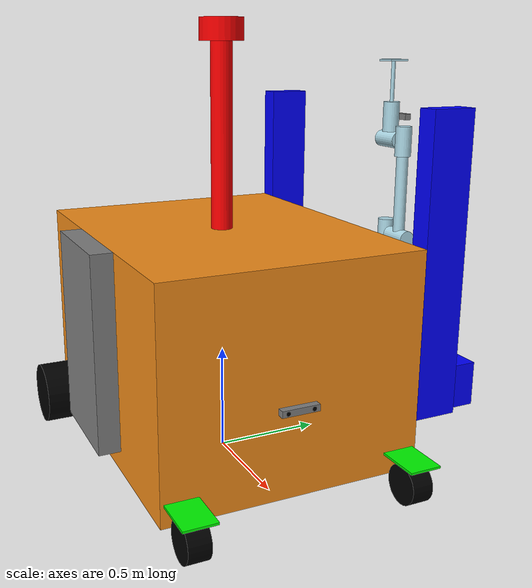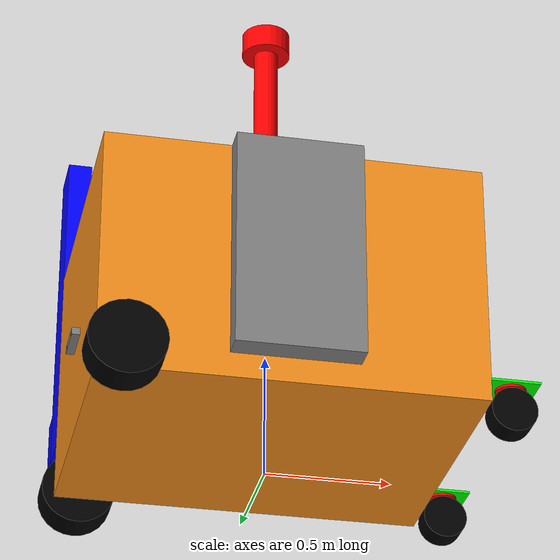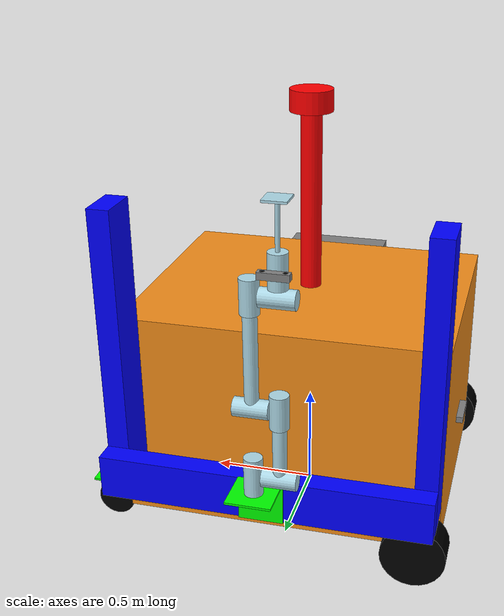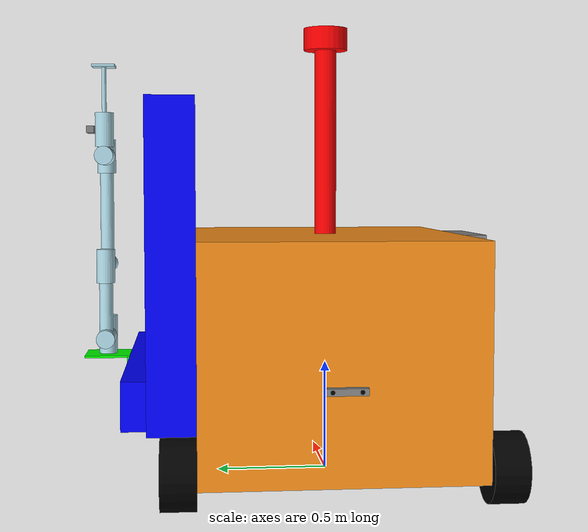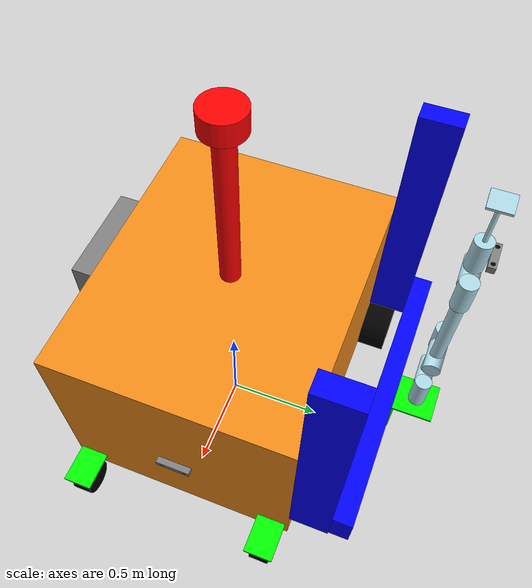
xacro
<?xml version='1.0'?>

<robot name="paint_robot" xmlns:xacro="http://www.ros.org/wiki/xacro">

<xacro:include filename="$(find paint_robot_pkg)/urdf/common_macros.xacro" /> <!--Change file location and package if applicable to test for yourself-->
<xacro:include filename="$(find paint_robot_pkg)/urdf/robot_control.gazebo.xacro" />  <!--Change file location and package name if applicable to test for yourself-->

  <xacro:property name="box_size_length" value="1.5" />
  <xacro:property name="box_size_width" value="1.2" />
  <xacro:property name="box_size_height" value="1.0" />
        <gazebo reference="base_link">
          <material>Gazebo/Orange</material>
        </gazebo>
          <gazebo reference="center_mass_balance">
          <material>Gazebo/Orange</material>
        </gazebo>
        <gazebo reference="LIDAR_top">
          <material>Gazebo/Yellow</material>
        </gazebo>
        <gazebo reference="camera_frame_front">
          <material>Gazebo/Black</material>
        </gazebo>
        <gazebo reference="camera_frame_back">
          <material>Gazebo/Black</material>
        </gazebo>
        <gazebo reference="camera_frame_arm">
          <material>Gazebo/Black</material>
        </gazebo>
        <gazebo reference="sensor_right_front">
          <material>Gazebo/White</material>
        </gazebo>
        <gazebo reference="sensor_left_front">
          <material>Gazebo/White</material>
        </gazebo>
        <gazebo reference="sensor_right_back">
          <material>Gazebo/White</material>
        </gazebo>
        <gazebo reference="sensor_left_back">
          <material>Gazebo/White</material>
        </gazebo>
        <gazebo reference="sensor_left_arm">
          <material>Gazebo/White</material>
        </gazebo>
        <gazebo reference="sensor_right_arm">
          <material>Gazebo/White</material>
        </gazebo>
         <gazebo reference="wheel_front_left">
          <material>Gazebo/Black</material>
        </gazebo>
        <gazebo reference="wheel_front_right">
          <material>Gazebo/Black</material>
        </gazebo>
        <gazebo reference="wheel_back_left">
          <material>Gazebo/Black</material>
        </gazebo>
        <gazebo reference="wheel_back_right">
          <material>Gazebo/Black</material>
        </gazebo>
        <gazebo reference="beam1">
          <material>Gazebo/Green</material>
        </gazebo>
        <gazebo reference="beam2">
          <material>Gazebo/Green</material>
        </gazebo>
        <gazebo reference="beam3">
          <material>Gazebo/Green</material>
        </gazebo>
        <gazebo reference="joint_1">
          <material>Gazebo/Blue</material>
        </gazebo>
        <gazebo reference="joint_2">
          <material>Gazebo/Blue</material>
        </gazebo>
        <gazebo reference="joint_3">
          <material>Gazebo/Blue</material>
        </gazebo>
        <gazebo reference="joint_4">
          <material>Gazebo/Blue</material>
        </gazebo>
        <gazebo reference="joint_5">
          <material>Gazebo/Blue</material>
        </gazebo>
        <gazebo reference="joint_6">
          <material>Gazebo/Blue</material>
        </gazebo>
        <gazebo reference="joint_7">
          <material>Gazebo/Blue</material>
        </gazebo>
        <gazebo reference="joint_8">
          <material>Gazebo/Blue</material>
        </gazebo>
        <gazebo reference="joint_9">
          <material>Gazebo/Blue</material>
        </gazebo>
        <gazebo reference="end_effector">
          <material>Gazebo/Red</material>
        </gazebo>
        <gazebo reference="nozzle">
          <material>Gazebo/Red</material>
        </gazebo>

  <!-- Base Link -->
  <link name="base_link">
    <visual>
      <origin xyz="0 0 0.6" rpy="0 0 0"/>
      <geometry>
        <box size="${box_size_length} ${box_size_width} ${box_size_height}" />
      </geometry>
    </visual>
    <collision>
      <origin xyz="0 0 0.6" rpy="0 0 0"/>
      <geometry>
        <box size="${box_size_length} ${box_size_width} ${box_size_height}" />
      </geometry>
    </collision>
      <xacro:inertial_box length="1.5" width="1.2" height="1.0" density="300">
        <origin xyz="0 0 0.6" rpy="0 0 0"/>
      </xacro:inertial_box>
  </link>

 <link name="center_mass_balance">
    <visual>
      <origin xyz="0 0 0" rpy="0 0 0"/>
      <geometry>
        <box size="0.5 0.1 0.9" />
      </geometry>
      <material name="grey">
        <color rgba="0.5 0.5 0.5 1"/>
      </material>
    </visual>
    <collision>
      <origin xyz="0 0 0" rpy="0 0 0"/>
      <geometry>
        <box size="0.5 0.1 0.9" />
      </geometry>
    </collision>
      <xacro:inertial_box length="0.5" width="0.1" height="0.9" density="3700">
        <origin xyz="0 0 0" rpy="0 0 0"/>
      </xacro:inertial_box>
  </link>

    <joint name="body_to_center_mass_balance" type="fixed">
    <axis xyz="0 0 0"/>
    <origin xyz="0 -0.65 0.65" rpy="0 0 0"/>
    <parent link="base_link" />
    <child link="center_mass_balance" />
  </joint>

  <xacro:property name="LIDAR_rod_length" value="0.84" />
  <xacro:property name="LIDAR_rod_radius" value="0.05" />
  <!--LIDAR Rod-->
    <link name="LIDAR_Rod">
    <visual>
      <origin xyz="0 0 0" rpy="0 0 0"/>
      <geometry>
        <cylinder length="${LIDAR_rod_length}" radius="${LIDAR_rod_radius}" />
      </geometry>
      <material name="red">
        <color rgba="1 0 0 1"/>
      </material>
    </visual>
    <collision>
      <origin xyz="0 0 0" rpy="0 0 0"/>
      <geometry>
        <cylinder length="${LIDAR_rod_length}" radius="${LIDAR_rod_radius}" />
      </geometry>
    </collision>
      <xacro:inertial_cylinder radius="${LIDAR_rod_radius}" length="${LIDAR_rod_length}" density="2700">
        <origin xyz="0 0 0" rpy="0 0 0"/>
      </xacro:inertial_cylinder>

  </link>

  <joint name="body_to_LIDAR_Rod" type="fixed">
    <axis xyz="0 0 0"/>
    <origin xyz="0 0 ${(box_size_height/2)+(LIDAR_rod_length/2)+0.6}" rpy="0 0 0"/> <!--The 0.6 is for the amount the box is lifted off ground-->
    <parent link="base_link" />
    <child link="LIDAR_Rod" />
  </joint>

  <link name="LIDAR_top">
    <visual>
      <origin xyz="0 0 0" rpy="0 0 0"/>
      <geometry>
        <cylinder length="0.1" radius="0.1" />
      </geometry>
      <material name="red">
        <color rgba="1 0 0 1"/>
      </material>
    </visual>
    <collision>
      <origin xyz="0 0 0" rpy="0 0 0"/>
      <geometry>
        <cylinder length="0.1" radius="0.1" />
      </geometry>
    </collision>
      <xacro:inertial_cylinder radius="0.1" length="0.1" density="509">
        <origin xyz="0 0 0" rpy="0 0 0"/>
      </xacro:inertial_cylinder>
  </link>

  <joint name="LIDAR_Rod_to_LIDAR" type="fixed">
    <axis xyz="0 0 0"/>
    <origin xyz="0 0 ${(LIDAR_rod_length/2)+0.05}" rpy="0 0 0"/>
    <parent link="LIDAR_Rod" />
    <child link="LIDAR_top" />
  </joint>

  <link name="camera_frame_front">
    <visual>
      <origin xyz="0 0 0" rpy="0 0 0"/>
      <geometry>
        <box size="0.033 0.175 0.03" />
      </geometry>
      <material name="grey">
        <color rgba="0.5 0.5 0.5 1"/>
      </material>
    </visual>
    <collision>
      <origin xyz="0 0 0" rpy="0 0 0"/>
      <geometry>
        <box size="0.033 0.175 0.03" />
      </geometry>
    </collision>
      <xacro:inertial_box length="0.033" width="0.175" height="0.03" density="300">
        <origin xyz="0 0 0" rpy="0 0 0"/>
      </xacro:inertial_box>
  </link>

  <joint name="base_link_to_camera_frame_front" type="fixed">
    <axis xyz="0 0 0"/>
    <origin xyz="0.7665 0 0.5" rpy="0 0 0"/>
    <parent link="base_link" />
    <child link="camera_frame_front" />
  </joint>

  <link name="camera_frame_back">
    <visual>
      <origin xyz="0 0 0" rpy="0 0 0"/>
      <geometry>
        <box size="0.033 0.175 0.03" />
      </geometry>
      <material name="grey">
        <color rgba="0.5 0.5 0.5 1"/>
      </material>
    </visual>
    <collision>
      <origin xyz="0 0 0" rpy="0 0 0"/>
      <geometry>
        <box size="0.033 0.175 0.03" />
      </geometry>
    </collision>
      <xacro:inertial_box length="0.033" width="0.175" height="0.03" density="300">
        <origin xyz="0 0 0" rpy="0 0 0"/>
      </xacro:inertial_box>
  </link>

  <joint name="base_link_to_camera_frame_back" type="fixed">
    <axis xyz="0 0 0"/>
    <origin xyz="-0.7665 0 0.5" rpy="0 0 0"/>
    <parent link="base_link" />
    <child link="camera_frame_back" />
  </joint>

  <link name="sensor_right_front">
    <visual>
      <origin xyz="0 0 0" rpy="0 0 1.5707"/>
      <geometry>
        <cylinder length="0.001" radius="0.0096"/>
      </geometry>
      <material name="black">
        <color rgba="0 0 0 1"/>
      </material>
    </visual>
        <collision>
      <origin xyz="0 0 0" rpy="0 0 0"/>
      <geometry>
        <cylinder length="0.001" radius="0.0096"/>
      </geometry>
    </collision>
      <xacro:inertial_cylinder radius="0.0096" length="0.001" density="1200">
        <origin xyz="0 0 0" rpy="0 0 0"/>
      </xacro:inertial_cylinder>
  </link>

    <joint name="camera_frame_front_to_sensor_right" type="fixed">
    <axis xyz="0 0 0"/>
    <origin xyz="0.017 0.06 0" rpy="0 1.57 0"/>
    <parent link="camera_frame_front" />
    <child link="sensor_right_front" />
  </joint>

    <link name="sensor_left_front">
    <visual>
      <origin xyz="0 0 0" rpy="0 0 1.5707"/>
      <geometry>
        <cylinder length="0.001" radius="0.0096"/>
      </geometry>
      <material name="black">
        <color rgba="0 0 0 1"/>
      </material>
    </visual>
        <collision>
      <origin xyz="0 0 0" rpy="0 0 0"/>
      <geometry>
        <cylinder length="0.001" radius="0.0096"/>
      </geometry>
    </collision>
      <xacro:inertial_cylinder radius="0.0096" length="0.001" density="1200">
        <origin xyz="0 0 0" rpy="0 0 0"/>
      </xacro:inertial_cylinder>
  </link>

    <joint name="camera_frame_front_to_sensor_left" type="fixed">
    <axis xyz="0 0 0"/>
    <origin xyz="0.017 -0.06 0" rpy="0 1.57 0"/>
    <parent link="camera_frame_front" />
    <child link="sensor_left_front" />
  </joint>

      <link name="sensor_right_back">
    <visual>
      <origin xyz="0 0 0" rpy="0 0 1.5707"/>
      <geometry>
        <cylinder length="0.001" radius="0.0096"/>
      </geometry>
      <material name="black">
        <color rgba="0 0 0 1"/>
      </material>
    </visual>
        <collision>
      <origin xyz="0 0 0" rpy="0 0 0"/>
      <geometry>
        <cylinder length="0.001" radius="0.0096"/>
      </geometry>
    </collision>
      <xacro:inertial_cylinder radius="0.0096" length="0.001" density="1200">
        <origin xyz="0 0 0" rpy="0 0 0"/>
      </xacro:inertial_cylinder>
  </link>

    <joint name="camera_frame_back_to_sensor_right" type="fixed">
    <axis xyz="0 0 0"/>
    <origin xyz="-0.017 -0.06 0" rpy="0 1.57 0"/>
    <parent link="camera_frame_back" />
    <child link="sensor_right_back" />
  </joint>

        <link name="sensor_left_back">
    <visual>
      <origin xyz="0 0 0" rpy="0 0 1.5707"/>
      <geometry>
        <cylinder length="0.001" radius="0.0096"/>
      </geometry>
      <material name="black">
        <color rgba="0 0 0 1"/>
      </material>
    </visual>
        <collision>
      <origin xyz="0 0 0" rpy="0 0 0"/>
      <geometry>
        <cylinder length="0.001" radius="0.0096"/>
      </geometry>
    </collision>
      <xacro:inertial_cylinder radius="0.0096" length="0.001" density="1200">
        <origin xyz="0 0 0" rpy="0 0 0"/>
      </xacro:inertial_cylinder>
  </link>

    <joint name="camera_frame_back_to_sensor_left" type="fixed">
    <axis xyz="0 0 0"/>
    <origin xyz="-0.017 0.06 0" rpy="0 1.57 0"/>
    <parent link="camera_frame_back" />
    <child link="sensor_left_back" />
  </joint>

  <xacro:property name="wheel_length" value="0.15" />
  <xacro:property name="wheel_radius" value="0.15" />
  <xacro:property name="cart_length" value="0.1" />
  <xacro:property name="cart_radius" value="0.09" />

  <!-- Shopping cart wheels -->
  <link name="wheel_front_right">
    <visual>
      <origin xyz="0 0 0" rpy="0 0 1.5707"/>
      <geometry>
        <cylinder length="${cart_length}" radius="${cart_radius}"/>
      </geometry>
      <material name="black">
        <color rgba="0 0 0 1"/>
      </material>
    </visual>
        <collision>
      <origin xyz="0 0 0" rpy="0 0 0"/>
      <geometry>
        <cylinder length="${cart_length}" radius="${cart_radius}" />
      </geometry>
    </collision>
      <xacro:inertial_cylinder radius="${cart_radius}" length="${cart_length}" density="1200">
        <origin xyz="0 0 0" rpy="0 0 0"/>
      </xacro:inertial_cylinder>
  </link>

  <link name="wheel_front_left">
    <visual>
      <origin xyz="0 0 0" rpy="0 0 1.5707"/>
      <geometry>
        <cylinder length="${cart_length}" radius="${cart_radius}"/>
      </geometry>
      <material name="black">
        <color rgba="0 0 0 1"/>
      </material>
    </visual>
        <collision>
      <origin xyz="0 0 0" rpy="0 0 0"/>
      <geometry>
        <cylinder length="${cart_length}" radius="${cart_radius}" />
      </geometry>
    </collision>
      <xacro:inertial_cylinder radius="${cart_radius}" length="${cart_length}" density="1200">
        <origin xyz="0 0 0" rpy="0 0 0"/>
      </xacro:inertial_cylinder>
  </link>

  <xacro:property name="revolute_radius" value="0.06" />
  <xacro:property name="revolute_length" value="0.01" />
  <link name="revolute_front_left">
    <visual>
      <origin xyz="0 0 0" rpy="0 0 0"/>
      <geometry>
        <cylinder length="${revolute_length}" radius="${revolute_radius}"/>
      </geometry>
      <material name="red">
        <color rgba="1 0 0 1"/>
      </material>
    </visual>
        <collision>
      <origin xyz="0 0 0" rpy="0 0 0"/>
      <geometry>
        <box size="0.065 0.065 0.01" />
      </geometry>
    </collision>
      <xacro:inertial_cylinder radius="${revolute_radius}" length="${revolute_length}" density="2700">
        <origin xyz="0 0 0" rpy="0 0 0"/>
      </xacro:inertial_cylinder>
  </link>

    <link name="revolute_front_right">
    <visual>
      <origin xyz="0 0 0" rpy="0 0 0"/>
      <geometry>
        <cylinder length="${revolute_length}" radius="${revolute_radius}"/>
      </geometry>
      <material name="red">
        <color rgba="1 0 0 1"/>
      </material>
    </visual>
        <collision>
      <origin xyz="0 0 0" rpy="0 0 0"/>
      <geometry>
        <box size="0.065 0.065 0.01" />
      </geometry>
    </collision>
      <xacro:inertial_cylinder radius="${revolute_radius}" length="${revolute_length}" density="2700">
        <origin xyz="0 0 0" rpy="0 0 0"/>
      </xacro:inertial_cylinder>
  </link>

  <xacro:property name="plate_length" value="0.2" />
  <xacro:property name="plate_width" value="0.15" />
  <xacro:property name="plate_height" value="0.01" />
  <link name="plate_front_left">
    <visual>
      <origin xyz="0 0 0" rpy="0 0 0"/>
      <geometry>
        <box size="${plate_length} ${plate_width} ${plate_height}" />
      </geometry>
      <material name="green">
        <color rgba="0 1 0 1"/>
      </material>
    </visual>
    <collision>
      <origin xyz="0 0 0" rpy="0 0 0"/>
      <geometry>
        <box size="${plate_length} ${plate_width} ${plate_height}"/>
      </geometry>
    </collision>
      <xacro:inertial_box length="${plate_length}" width="${plate_width}" height="${plate_height}" density="2700">
        <origin xyz="0 0 0" rpy="0 0 0"/>
      </xacro:inertial_box>
  </link>

    <link name="plate_front_right">
    <visual>
      <origin xyz="0 0 0" rpy="0 0 0"/>
      <geometry>
        <box size="${plate_length} ${plate_width} ${plate_height}" />
      </geometry>
      <material name="green">
        <color rgba="0 1 0 1"/>
      </material>
    </visual>
    <collision>
      <origin xyz="0 0 0" rpy="0 0 0"/>
      <geometry>
        <box size="${plate_length} ${plate_width} ${plate_height}"/>
      </geometry>
    </collision>
      <xacro:inertial_box length="${plate_length}" width="${plate_width}" height="${plate_height}" density="2700">
        <origin xyz="0 0 0" rpy="0 0 0"/>
      </xacro:inertial_box>
  </link>

    <joint name="body_to_front_left_plate" type="fixed">
    <axis xyz="0 0 0"/>
    <origin xyz="${box_size_length/2+plate_length/2} 0.51 0.2" rpy="0 0 0"/>
    <parent link="base_link" />
    <child link="plate_front_left" />
  </joint>

  <joint name="body_to_front_right_plate" type="fixed">
    <axis xyz="0 0 0"/>
    <origin xyz="${box_size_length/2+plate_length/2} -0.51 0.2" rpy="0 0 0"/>
    <parent link="base_link" />
    <child link="plate_front_right" />
  </joint>

  <joint name="front_left_plate_to_revolute_front_left" type="continuous">
    <axis xyz="0 0 1"/>
    <origin xyz="0 0 -${plate_height/2+revolute_length/2}" rpy="0 0 0"/>
    <parent link="plate_front_left" />
    <child link="revolute_front_left" />
  </joint>

  <joint name="front_right_plate_to_revolute_front_right" type="continuous">
    <axis xyz="0 0 1"/>
    <origin xyz="0 0 -${plate_height/2+revolute_length/2}" rpy="0 0 0"/>
    <parent link="plate_front_right" />
    <child link="revolute_front_right" />
  </joint>

  <joint name="revolute_front_left_to_front_left_wheel" type="continuous">
    <axis xyz="0 0 1"/>
    <origin xyz="0 0 -${(revolute_length/2)+(cart_radius/2)+0.045}" rpy="1.5707 0 0"/>
    <parent link="revolute_front_left" />
    <child link="wheel_front_left" />
  </joint>

  <joint name="revolute_front_right_to_front_right_wheel" type="continuous">
    <axis xyz="0 0 1"/>
    <origin xyz="0 0 -${(revolute_length/2)+(cart_radius/2)+0.045}" rpy="1.5707 0 0"/>
    <parent link="revolute_front_right" />
    <child link="wheel_front_right" />
  </joint>

  <!--Actuator wheels-->
  <link name="wheel_back_right">
    <visual>
      <origin xyz="0 0 0" rpy="0 0 1.5707"/>
      <geometry>
        <cylinder length="${wheel_length}" radius="${wheel_radius}"/>
      </geometry>
      <material name="black">
        <color rgba="0 0 0 1"/>
      </material>
    </visual>
        <collision>
      <origin xyz="0 0 0" rpy="0 0 0"/>
      <geometry>
        <cylinder length="${wheel_length}" radius="${wheel_radius}" />
      </geometry>
    </collision>
      <xacro:inertial_cylinder radius="${wheel_radius}" length="${wheel_length}" density="1500">
        <origin xyz="0 0 0" rpy="0 0 0"/>
      </xacro:inertial_cylinder>
  </link>

  <link name="wheel_back_left">
    <visual>
      <origin xyz="0 0 0" rpy="0 0 0"/>
      <geometry>
        <cylinder length="${wheel_length}" radius="${wheel_radius}"/>
      </geometry>
      <material name="black">
        <color rgba="0 0 0 1"/>
      </material>
    </visual>
        <collision>
      <origin xyz="0 0 0" rpy="0 0 0"/>
      <geometry>
        <cylinder length="${wheel_length}" radius="${wheel_radius}" />
      </geometry>
    </collision>
      <xacro:inertial_cylinder radius="${wheel_radius}" length="${wheel_length}" density="1500">
        <origin xyz="0 0 0" rpy="0 0 0"/>
      </xacro:inertial_cylinder>
  </link>

  <joint name="body_to_back_left_wheel" type="continuous">
    <axis xyz="0 0 1"/>
    <origin xyz="-0.65 0.675 ${wheel_radius}" rpy="1.5707  0 0"/>
    <parent link="base_link" />
    <child link="wheel_back_left" />
  </joint>

  <joint name="body_to_back_right_wheel" type="continuous">
    <axis xyz="0 0 1"/>
    <origin xyz="-0.65 -0.675 ${wheel_radius}" rpy="1.5707 0 0"/>
    <parent link="base_link" />
    <child link="wheel_back_right" />
  </joint>

  <!--Robot arm section-->
  <!--Vertical lift beam-->
  <link name="beam1">
    <visual>
      <origin xyz="0 0 0" rpy="0 0 0"/>
      <geometry>
        <box size="0.1 0.2 1.35" />
      </geometry>
      <material name="blue">
        <color rgba="0 0 1 1"/>
      </material>
    </visual>
    <collision>
      <origin xyz="0 0 0" rpy="0 0 0"/>
      <geometry>
        <box size="0.1 0.2 1.35" />
      </geometry>
    </collision>
      <xacro:inertial_box length="0.1" width="0.2" height="1.35" density="2700">
        <origin xyz="0 0 0" rpy="0 0 0"/>
      </xacro:inertial_box>
  </link>

    <link name="beam2">
    <visual>
      <origin xyz="0 0 0" rpy="0 0 0"/>
      <geometry>
        <box size="0.1 0.2 1.35" />
      </geometry>
      <material name="blue">
        <color rgba="0 0 1 1"/>
      </material>
    </visual>
    <collision>
      <origin xyz="0 0 0" rpy="0 0 0"/>
      <geometry>
        <box size="0.1 0.2 1.35" />
      </geometry>
    </collision>
      <xacro:inertial_box length="0.1" width="0.2" height="1.35" density="2700">
        <origin xyz="0 0 0" rpy="0 0 0"/>
      </xacro:inertial_box>
  </link>

    <joint name="body_to_beam1" type="fixed">
    <axis xyz="0 0 0"/>
    <origin xyz="0.7 0.7 1" rpy="0 0 0"/>
    <parent link="base_link" />
    <child link="beam1" />
  </joint>

    <joint name="body_to_beam2" type="fixed">
    <axis xyz="0 0 0"/>
    <origin xyz="-0.7 0.7 1" rpy="0 0 0"/>
    <parent link="base_link" />
    <child link="beam2" />
  </joint>

  <link name="beam3">
    <visual>
      <origin xyz="0 0 0" rpy="0 0 0"/>
      <geometry>
        <box size="1.5 0.1 0.2" />
      </geometry>
      <material name="blue">
        <color rgba="0 0 1 1"/>
      </material>
    </visual>
    <collision>
      <origin xyz="0 0 0" rpy="0 0 0"/>
      <geometry>
        <box size="1.5 0.1 0.2" />
      </geometry>
    </collision>
      <xacro:inertial_box length="1.5" width="0.1" height="0.2" density="2700">
        <origin xyz="0 0 0" rpy="0 0 0"/>
      </xacro:inertial_box>
  </link>

    <joint name="beam3_to_beam2" type="prismatic">
    <axis xyz="0 0 1"/>
    <origin xyz="0.7 0.15 -0.55" rpy="0 0 0"/>
    <limit lower="0.0" upper="1.0" effort="100" velocity="1.0"/>
    <dynamics damping="100" friction="100"/>
    <parent link="beam2" />
    <child link="beam3" />
  </joint>

  <!--Robot arm joints-->

  <link name="plate_horizontal">
    <visual>
      <origin xyz="0 0 0" rpy="0 0 0"/>
      <geometry>
        <box size="0.2 0.01 0.2"  />
      </geometry>
      <material name="green">
        <color rgba="0 1 0 1"/>
      </material>
    </visual>
    <collision>
      <origin xyz="0 0 0" rpy="0 0 0"/>
      <geometry>
        <box size="0.2 0.01 0.2" />
      </geometry>
    </collision>
      <xacro:inertial_box length="0.2" width="0.01" height="0.2" density="2700">
        <origin xyz="0 0 0" rpy="0 0 0"/>
      </xacro:inertial_box>
  </link>

  <joint name="beam3_to_plate_horizontal" type="prismatic">
    <axis xyz="1 0 0"/>
    <origin xyz="0 0.055   0" rpy="0 0 0"/>
    <limit lower="-0.5" upper="0.5" effort="100" velocity="1.0"/>
    <dynamics damping="100" friction="100"/>
    <parent link="beam3" />
    <child link="plate_horizontal" />
  </joint>

    <link name="plate_vertical">
    <visual>
      <origin xyz="0 0 0" rpy="0 0 0"/>
      <geometry>
        <box size="0.2 0.2 0.01"  />
      </geometry>
      <material name="green">
        <color rgba="0 1 0 1"/>
      </material>
    </visual>
    <collision>
      <origin xyz="0 0 0" rpy="0 0 0"/>
      <geometry>
        <box size="0.2 0.2 0.01" />
      </geometry>
    </collision>
      <xacro:inertial_box length="0.2" width="0.2" height="0.01" density="2700">
        <origin xyz="0 0 0" rpy="0 0 0"/>
      </xacro:inertial_box>
  </link>

  <joint name="plate_horizontal_to_plate_vertical" type="fixed">
    <axis xyz="0 0 0"/>
    <origin xyz="0 0.095 0.1005" rpy="0 0 0"/>
    <parent link="plate_horizontal" />
    <child link="plate_vertical" />
  </joint>

  <link name="joint_1">
    <visual>
      <origin xyz="0 0 0" rpy="0 0 0"/>
      <geometry>
        <cylinder length="0.178" radius="0.041" />
      </geometry>
      <material name="light_blue">
        <color rgba="0.678 0.847 0.902 1"/>
      </material>
    </visual>
    <collision>
      <origin xyz="0 0 0" rpy="0 0 0"/>
      <geometry>
        <cylinder length="0.178" radius="0.041" />
      </geometry>
    </collision>
      <xacro:inertial_cylinder radius="0.041" length="0.178" density="2700">
        <origin xyz="0 0 0" rpy="0 0 0"/>
      </xacro:inertial_cylinder>
  </link>

  <joint name="plate_vertical_to_joint_1" type="revolute">
    <axis xyz="0 0 1"/>
    <origin xyz="0 0 0.09" rpy="0 0 0"/>
    <limit lower="-3.14" upper="0" effort="100" velocity="1.0"/>
    <dynamics damping="100" friction="100"/>
    <parent link="plate_vertical" />
    <child link="joint_1" />
  </joint>

    <link name="joint_2">
    <visual>
      <origin xyz="0 0 0" rpy="0 0 0"/>
      <geometry>
        <cylinder length="0.15" radius="0.041" />
      </geometry>
      <material name="light_blue">
        <color rgba="0.678 0.847 0.902 1"/>
      </material>
    </visual>
    <collision>
      <origin xyz="0 0 0" rpy="0 0 0"/>
      <geometry>
        <cylinder length="0.15" radius="0.041" />
      </geometry>
    </collision>
      <xacro:inertial_cylinder radius="0.041" length="0.15" density="2700">
        <origin xyz="0 0 0" rpy="0 0 0"/>
      </xacro:inertial_cylinder>
  </link>

  <joint name="joint_1_to_joint_2" type="revolute">
    <axis xyz="0 0 1"/>
    <origin xyz="-0.115 0 0" rpy="0 -1.5707 0"/>
    <limit lower="-1.57" upper="1.57" effort="100" velocity="1.0"/>
    <dynamics damping="100" friction="100"/>
    <parent link="joint_1" />
    <child link="joint_2" />
  </joint>

    <link name="joint_3">
    <visual>
      <origin xyz="0 0 0" rpy="0 0 0"/>
      <geometry>
        <cylinder length="0.234" radius="0.03" />
      </geometry>
      <material name="light_blue">
        <color rgba="0.678 0.847 0.902 1"/>
      </material>
    </visual>
    <collision>
      <origin xyz="0 0 0" rpy="0 0 0"/>
      <geometry>
        <cylinder length="0.234" radius="0.03" />
      </geometry>
    </collision>
      <xacro:inertial_cylinder radius="0.03" length="0.234" density="2700">
        <origin xyz="0 0 0" rpy="0 0 0"/>
      </xacro:inertial_cylinder>
  </link>

  <joint name="joint_2_to_joint_3" type="fixed">
    <axis xyz="0 0 0"/>
    <origin xyz="0.142 0 0" rpy="0 1.5707 0"/>
    <parent link="joint_2" />
    <child link="joint_3" />
  </joint>

  <link name="joint_4">
    <visual>
      <origin xyz="0 0 0" rpy="0 0 0"/>
      <geometry>
        <cylinder length="0.15" radius="0.041" />
      </geometry>
      <material name="light_blue">
        <color rgba="0.678 0.847 0.902 1"/>
      </material>
    </visual>
    <collision>
      <origin xyz="0 0 0" rpy="0 0 0"/>
      <geometry>
        <cylinder length="0.15" radius="0.041" />
      </geometry>
    </collision>
      <xacro:inertial_cylinder radius="0.041" length="0.15" density="2700">
        <origin xyz="0 0 0" rpy="0 0 0"/>
      </xacro:inertial_cylinder>
  </link>

  <joint name="joint_3_to_joint_4" type="fixed">
    <axis xyz="0 0 0"/>
    <origin xyz="0 0 0.18" rpy="0 0 0"/>
    <parent link="joint_3" />
    <child link="joint_4" />
  </joint>

    <link name="joint_5">
    <visual>
      <origin xyz="0 0 0" rpy="0 0 0"/>
      <geometry>
        <cylinder length="0.15" radius="0.041" />
      </geometry>
      <material name="light_blue">
        <color rgba="0.678 0.847 0.902 1"/>
      </material>
    </visual>
    <collision>
      <origin xyz="0 0 0" rpy="0 0 0"/>
      <geometry>
        <cylinder length="0.15" radius="0.041" />
      </geometry>
    </collision>
      <xacro:inertial_cylinder radius="0.041" length="0.15" density="2700">
        <origin xyz="0 0 0" rpy="0 0 0"/>
      </xacro:inertial_cylinder>
  </link>

  <joint name="joint_4_to_joint_5" type="revolute">
    <axis xyz="0 0 1"/>
    <origin xyz="0.115 0 0" rpy="0 -1.5707 0"/>
    <limit lower="-3.14" upper="3.14" effort="100" velocity="1.0"/>
    <dynamics damping="100" friction="100"/>
    <parent link="joint_4" />
    <child link="joint_5" />
  </joint>

      <link name="joint_6">
    <visual>
      <origin xyz="0 0 0" rpy="0 0 0"/>
      <geometry>
        <cylinder length="0.392" radius="0.03" />
      </geometry>
      <material name="light_blue">
        <color rgba="0.678 0.847 0.902 1"/>
      </material>
    </visual>
    <collision>
      <origin xyz="0 0 0" rpy="0 0 0"/>
      <geometry>
        <cylinder length="0.392" radius="0.03" />
      </geometry>
    </collision>
      <xacro:inertial_cylinder radius="0.03" length="0.392" density="2700">
        <origin xyz="0 0 0" rpy="0 0 0"/>
      </xacro:inertial_cylinder>
  </link>

  <joint name="joint_5_to_joint_6" type="fixed">
    <axis xyz="0 0 0"/>
    <origin xyz="0.22 0 0" rpy="0 1.5707 0"/>
    <parent link="joint_5" />
    <child link="joint_6" />
  </joint>

      <link name="joint_7">
    <visual>
      <origin xyz="0 0 0" rpy="0 0 0"/>
      <geometry>
        <cylinder length="0.15" radius="0.041" />
      </geometry>
      <material name="light_blue">
        <color rgba="0.678 0.847 0.902 1"/>
      </material>
    </visual>
    <collision>
      <origin xyz="0 0 0" rpy="0 0 0"/>
      <geometry>
        <cylinder length="0.15" radius="0.041" />
      </geometry>
    </collision>
      <xacro:inertial_cylinder radius="0.041" length="0.15" density="2700">
        <origin xyz="0 0 0" rpy="0 0 0"/>
      </xacro:inertial_cylinder>
  </link>

  <joint name="joint_6_to_joint_7" type="fixed">
    <axis xyz="0 0 0"/>
    <origin xyz="0 0 0.271" rpy="0 0 0"/>
    <parent link="joint_6" />
    <child link="joint_7" />
  </joint>

  <link name="joint_8">
    <visual>
      <origin xyz="0 0 0" rpy="0 0 0"/>
      <geometry>
        <cylinder length="0.15" radius="0.041" />
      </geometry>
      <material name="light_blue">
        <color rgba="0.678 0.847 0.902 1"/>
      </material>
    </visual>
    <collision>
      <origin xyz="0 0 0" rpy="0 0 0"/>
      <geometry>
        <cylinder length="0.15" radius="0.041" />
      </geometry>
    </collision>
      <xacro:inertial_cylinder radius="0.041" length="0.15" density="2700">
        <origin xyz="0 0 0" rpy="0 0 0"/>
      </xacro:inertial_cylinder>
  </link>

  <joint name="joint_7_to_joint_8" type="revolute">
    <axis xyz="0 0 1"/>
    <origin xyz="-0.115 0 0" rpy="0 -1.5707 0"/>
    <limit lower="-3.14" upper="3.14" effort="100" velocity="1.0"/>
    <dynamics damping="100" friction="100"/>
    <parent link="joint_7" />
    <child link="joint_8" />
  </joint>

        <link name="joint_9">
    <visual>
      <origin xyz="0 0 0" rpy="0 0 0"/>
      <geometry>
        <cylinder length="0.15" radius="0.041" />
      </geometry>
      <material name="light_blue">
        <color rgba="0.678 0.847 0.902 1"/>
      </material>
    </visual>
    <collision>
      <origin xyz="0 0 0" rpy="0 0 0"/>
      <geometry>
        <cylinder length="0.15" radius="0.041" />
      </geometry>
    </collision>
      <xacro:inertial_cylinder radius="0.041" length="0.15" density="2700">
        <origin xyz="0 0 0" rpy="0 0 0"/>
      </xacro:inertial_cylinder>
  </link>

  <joint name="joint_8_to_joint_9" type="revolute">
    <axis xyz="0 0 1"/>
    <origin xyz="0.115 0 0" rpy="0 1.5707 0"/>
    <limit lower="-3.14" upper="3.14" effort="100" velocity="1.0"/>
    <dynamics damping="100" friction="100"/>
    <parent link="joint_8" />
    <child link="joint_9" />
  </joint>

   <link name="camera_frame_arm">
    <visual>
      <origin xyz="0 0 0" rpy="0 0 0"/>
      <geometry>
        <box size="0.033 0.13 0.03" />
      </geometry>
      <material name="grey">
        <color rgba="0.5 0.5 0.5 1"/>
      </material>
    </visual>
    <collision>
      <origin xyz="0 0 0" rpy="0 0 0"/>
      <geometry>
        <box size="0.033 0.13 0.03" />
      </geometry>
    </collision>
      <xacro:inertial_box length="0.033" width="0.13" height="0.03" density="300">
        <origin xyz="0 0 0" rpy="0 0 0"/>
      </xacro:inertial_box>
  </link>

  <joint name="joint_9_to_camera_frame_arm" type="fixed">
    <axis xyz="0 0 0"/>
    <origin xyz="0 0.058 0" rpy="0 0 1.57"/>
    <parent link="joint_9" />
    <child link="camera_frame_arm" />
  </joint>

    <link name="sensor_right_arm">
    <visual>
      <origin xyz="0 0 0" rpy="0 0 0"/>
      <geometry>
        <cylinder length="0.001" radius="0.0096"/>
      </geometry>
      <material name="black">
        <color rgba="0 0 0 1"/>
      </material>
    </visual>
        <collision>
      <origin xyz="0 0 0" rpy="0 0 0"/>
      <geometry>
        <cylinder length="0.001" radius="0.0096"/>
      </geometry>
    </collision>
      <xacro:inertial_cylinder radius="0.0096" length="0.001" density="1200">
        <origin xyz="0 0 0" rpy="0 0 0"/>
      </xacro:inertial_cylinder>
  </link>

    <joint name="camera_frame_arm_to_sensor_right" type="fixed">
    <axis xyz="0 0 0"/>
    <origin xyz="0 0.045 0.0155" rpy="0 0 0"/>
    <parent link="camera_frame_arm" />
    <child link="sensor_right_arm" />
  </joint>

    <link name="sensor_left_arm">
    <visual>
      <origin xyz="0 0 0" rpy="0 0 0"/>
      <geometry>
        <cylinder length="0.001" radius="0.0096"/>
      </geometry>
      <material name="black">
        <color rgba="0 0 0 1"/>
      </material>
    </visual>
        <collision>
      <origin xyz="0 0 0" rpy="0 0 0"/>
      <geometry>
        <cylinder length="0.001" radius="0.0096"/>
      </geometry>
    </collision>
      <xacro:inertial_cylinder radius="0.0096" length="0.001" density="1200">
        <origin xyz="0 0 0" rpy="0 0 0"/>
      </xacro:inertial_cylinder>
  </link>

    <joint name="camera_frame_arm_to_sensor_left" type="fixed">
    <axis xyz="0 0 0"/>
    <origin xyz="0 -0.045 0.0155" rpy="0 0 0"/>
    <parent link="camera_frame_arm" />
    <child link="sensor_left_arm" />
  </joint>

    <link name="end_effector">
    <visual>
      <origin xyz="0 0 0" rpy="0 0 0"/>
      <geometry>
        <cylinder length="0.2" radius="0.01" />
      </geometry>
      <material name="light_blue">
        <color rgba="0.678 0.847 0.902 1"/>
      </material>
    </visual>
    <collision>
      <origin xyz="0 0 0" rpy="0 0 0"/>
      <geometry>
        <cylinder length="0.2" radius="0.01" />
      </geometry>
    </collision>
      <xacro:inertial_cylinder radius="0.01" length="0.2" density="2700">
        <origin xyz="0 0 0" rpy="0 0 0"/>
      </xacro:inertial_cylinder>
  </link>

  <joint name="joint_9_to_end_effector" type="fixed">
    <axis xyz="0 0 0"/>
    <origin xyz="0 0 0.175" rpy="0 0 0"/>
    <parent link="joint_9" />
    <child link="end_effector" />
  </joint>

    <link name="nozzle">
    <visual>
      <origin xyz="0 0 0" rpy="0 0 0"/>
      <geometry>
        <box size="0.1 0.1 0.01" />
      </geometry>
      <material name="light_blue">
        <color rgba="0.678 0.847 0.902 1"/>
      </material>
    </visual>
    <collision>
      <origin xyz="0 0 0" rpy="0 0 0"/>
      <geometry>
        <box size="0.1 0.1 0.01" />
      </geometry>
    </collision>
      <xacro:inertial_box length="0.1" width="0.1" height="0.01" density="2700">
        <origin xyz="0 0 0" rpy="0 0 0"/>
      </xacro:inertial_box>
  </link>

  <joint name="end_effector_to_nozzle" type="fixed">
    <axis xyz="0 0 0"/>
    <origin xyz="0 0 0.105" rpy="0 0 0"/>
    <parent link="end_effector" />
    <child link="nozzle" />
  </joint>

</robot>
